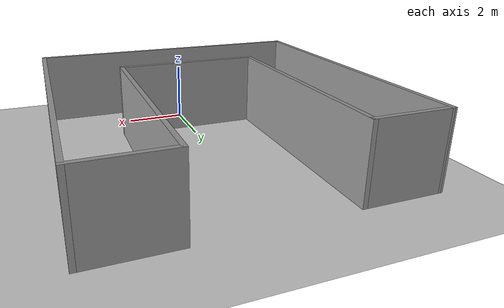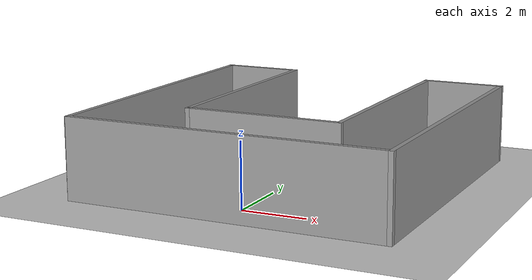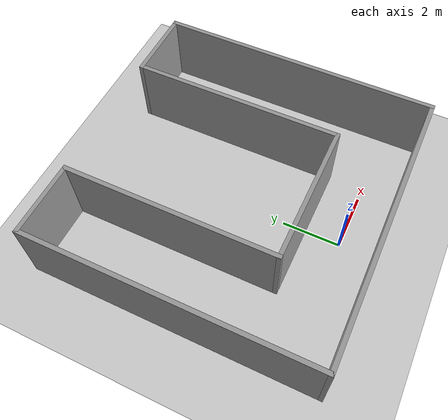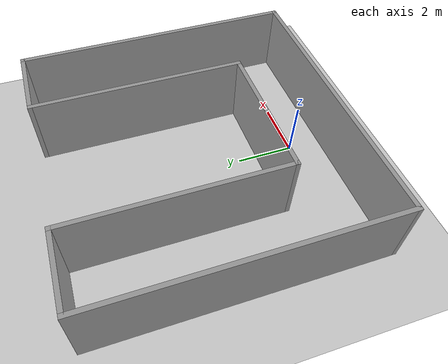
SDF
<sdf version="1.6">
 <world name="default">
  <light name="sun" type="directional">
   <pose>0 0 10 0 -0 0</pose>
   <diffuse>0.8 0.8 0.8 1</diffuse>
   <specular>0.1 0.1 0.1 1</specular>
   <attenuation>
    <range>1000</range>
    <constant>0.9</constant>
    <linear>0.01</linear>
    <quadratic>0.001</quadratic>
   </attenuation>
   <direction>-0.5 0.5 -1</direction>
  </light>
  <model name="ground_plane">
   <static>1</static>
   <link name="link">
    <collision name="collision">
     <geometry><plane><normal>0 0 1</normal><size>100 100</size></plane></geometry>
     <surface><friction><ode><mu>100</mu><mu2>50</mu2></ode></friction></surface>
    </collision>
    <visual name="visual">
     <cast_shadows>0</cast_shadows>
     <geometry><plane><normal>0 0 1</normal><size>100 100</size></plane></geometry>
     <material>
      <script><uri>file://media/materials/scripts/gazebo.material</uri><name>Gazebo/Grey</name></script>
     </material>
    </visual>
   </link>
  </model>
  <gravity>0 0 -9.8</gravity>
  <magnetic_field>6e-06 2.3e-05 -4.2e-05</magnetic_field>
  <atmosphere type="adiabatic"/>
  <physics name="default_physics" default="0" type="ode">
   <max_step_size>0.001</max_step_size>
   <real_time_factor>1</real_time_factor>
   <real_time_update_rate>1000</real_time_update_rate>
  </physics>
  <scene><ambient>0.4 0.4 0.4 1</ambient><background>0.7 0.7 0.7 1</background><shadows>1</shadows></scene>
  <spherical_coordinates>
   <surface_model>EARTH_WGS84</surface_model>
   <latitude_deg>0</latitude_deg>
   <longitude_deg>0</longitude_deg>
   <elevation>0</elevation>
   <heading_deg>0</heading_deg>
  </spherical_coordinates>
  <model name="test_building">
   <link name="Wall_0">
    <pose>-4.92492 -0.009003 0 0 0 -1.57076</pose>
    <visual name="Wall_0_Visual">
     <pose>0 0 1.25 0 -0 0</pose>
     <geometry><box><size>9.98209 0.15 2.5</size></box></geometry>
     <material>
      <script><uri>file://media/materials/scripts/gazebo.material</uri><name>Gazebo/Grey</name></script>
      <ambient>1 1 1 1</ambient>
      <diffuse>0.7 0.7 0.7 1</diffuse>
      <specular>0.01 0.01 0.01 1</specular>
      <emissive>0 0 0 1</emissive>
     </material>
    </visual>
    <collision name="Wall_0_Collision">
     <pose>0 0 1.25 0 -0 0</pose>
     <geometry><box><size>9.98209 0.15 2.5</size></box></geometry>
     <surface>
      <friction>
       <ode><mu>1</mu><mu2>1</mu2><fdir1>0 0 0</fdir1><slip1>0</slip1><slip2>0</slip2></ode>
       <torsional>
        <coefficient>1</coefficient>
        <patch_radius>0</patch_radius>
        <surface_radius>0</surface_radius>
        <use_patch_radius>1</use_patch_radius>
        <ode><slip>0</slip></ode>
       </torsional>
      </friction>
      <bounce><restitution_coefficient>0</restitution_coefficient><threshold>1e+06</threshold></bounce>
      <contact>
       <collide_without_contact>0</collide_without_contact>
       <collide_without_contact_bitmask>1</collide_without_contact_bitmask>
       <collide_bitmask>1</collide_bitmask>
       <ode>
        <soft_cfm>0</soft_cfm>
        <soft_erp>0.2</soft_erp>
        <kp>1e+13</kp>
        <kd>1</kd>
        <max_vel>0.01</max_vel>
        <min_depth>0</min_depth>
       </ode>
       <bullet>
        <split_impulse>1</split_impulse>
        <split_impulse_penetration_threshold>-0.01</split_impulse_penetration_threshold>
        <soft_cfm>0</soft_cfm>
        <soft_erp>0.2</soft_erp>
        <kp>1e+13</kp>
        <kd>1</kd>
       </bullet>
      </contact>
     </surface>
    </collision>
   </link>
   <link name="Wall_1">
    <pose>8.4e-05 -4.925 0 0 -0 1e-05</pose>
    <visual name="Wall_1_Visual">
     <pose>0 0 1.25 0 -0 0</pose>
     <geometry><box><size>10 0.15 2.5</size></box></geometry>
     <material>
      <script><uri>file://media/materials/scripts/gazebo.material</uri><name>Gazebo/Grey</name></script>
      <ambient>1 1 1 1</ambient>
      <diffuse>0.7 0.7 0.7 1</diffuse>
      <specular>0.01 0.01 0.01 1</specular>
      <emissive>0 0 0 1</emissive>
     </material>
    </visual>
    <collision name="Wall_1_Collision">
     <pose>0 0 1.25 0 -0 0</pose>
     <geometry><box><size>10 0.15 2.5</size></box></geometry>
     <surface>
      <friction>
       <ode><mu>1</mu><mu2>1</mu2><fdir1>0 0 0</fdir1><slip1>0</slip1><slip2>0</slip2></ode>
       <torsional>
        <coefficient>1</coefficient>
        <patch_radius>0</patch_radius>
        <surface_radius>0</surface_radius>
        <use_patch_radius>1</use_patch_radius>
        <ode><slip>0</slip></ode>
       </torsional>
      </friction>
      <bounce><restitution_coefficient>0</restitution_coefficient><threshold>1e+06</threshold></bounce>
      <contact>
       <collide_without_contact>0</collide_without_contact>
       <collide_without_contact_bitmask>1</collide_without_contact_bitmask>
       <collide_bitmask>1</collide_bitmask>
       <ode>
        <soft_cfm>0</soft_cfm>
        <soft_erp>0.2</soft_erp>
        <kp>1e+13</kp>
        <kd>1</kd>
        <max_vel>0.01</max_vel>
        <min_depth>0</min_depth>
       </ode>
       <bullet>
        <split_impulse>1</split_impulse>
        <split_impulse_penetration_threshold>-0.01</split_impulse_penetration_threshold>
        <soft_cfm>0</soft_cfm>
        <soft_erp>0.2</soft_erp>
        <kp>1e+13</kp>
        <kd>1</kd>
       </bullet>
      </contact>
     </surface>
    </collision>
   </link>
   <link name="Wall_2">
    <pose>4.92492 4.4e-05 0 0 -0 1.5708</pose>
    <visual name="Wall_2_Visual">
     <pose>0 0 1.25 0 -0 0</pose>
     <geometry><box><size>10 0.15 2.5</size></box></geometry>
     <material>
      <script><uri>file://media/materials/scripts/gazebo.material</uri><name>Gazebo/Grey</name></script>
      <ambient>1 1 1 1</ambient>
      <diffuse>0.7 0.7 0.7 1</diffuse>
      <specular>0.01 0.01 0.01 1</specular>
      <emissive>0 0 0 1</emissive>
     </material>
    </visual>
    <collision name="Wall_2_Collision">
     <pose>0 0 1.25 0 -0 0</pose>
     <geometry><box><size>10 0.15 2.5</size></box></geometry>
     <surface>
      <friction>
       <ode><mu>1</mu><mu2>1</mu2><fdir1>0 0 0</fdir1><slip1>0</slip1><slip2>0</slip2></ode>
       <torsional>
        <coefficient>1</coefficient>
        <patch_radius>0</patch_radius>
        <surface_radius>0</surface_radius>
        <use_patch_radius>1</use_patch_radius>
        <ode><slip>0</slip></ode>
       </torsional>
      </friction>
      <bounce><restitution_coefficient>0</restitution_coefficient><threshold>1e+06</threshold></bounce>
      <contact>
       <collide_without_contact>0</collide_without_contact>
       <collide_without_contact_bitmask>1</collide_without_contact_bitmask>
       <collide_bitmask>1</collide_bitmask>
       <ode>
        <soft_cfm>0</soft_cfm>
        <soft_erp>0.2</soft_erp>
        <kp>1e+13</kp>
        <kd>1</kd>
        <max_vel>0.01</max_vel>
        <min_depth>0</min_depth>
       </ode>
       <bullet>
        <split_impulse>1</split_impulse>
        <split_impulse_penetration_threshold>-0.01</split_impulse_penetration_threshold>
        <soft_cfm>0</soft_cfm>
        <soft_erp>0.2</soft_erp>
        <kp>1e+13</kp>
        <kd>1</kd>
       </bullet>
      </contact>
     </surface>
    </collision>
   </link>
   <link name="Wall_3">
    <pose>3.67492 4.92504 0 0 -0 3.14159</pose>
    <visual name="Wall_3_Visual">
     <pose>0 0 1.25 0 -0 0</pose>
     <geometry><box><size>2.65 0.15 2.5</size></box></geometry>
     <material>
      <script><uri>file://media/materials/scripts/gazebo.material</uri><name>Gazebo/Grey</name></script>
      <ambient>1 1 1 1</ambient>
      <diffuse>0.7 0.7 0.7 1</diffuse>
      <specular>0.01 0.01 0.01 1</specular>
      <emissive>0 0 0 1</emissive>
     </material>
    </visual>
    <collision name="Wall_3_Collision">
     <pose>0 0 1.25 0 -0 0</pose>
     <geometry><box><size>2.65 0.15 2.5</size></box></geometry>
     <surface>
      <friction>
       <ode><mu>1</mu><mu2>1</mu2><fdir1>0 0 0</fdir1><slip1>0</slip1><slip2>0</slip2></ode>
       <torsional>
        <coefficient>1</coefficient>
        <patch_radius>0</patch_radius>
        <surface_radius>0</surface_radius>
        <use_patch_radius>1</use_patch_radius>
        <ode><slip>0</slip></ode>
       </torsional>
      </friction>
      <bounce><restitution_coefficient>0</restitution_coefficient><threshold>1e+06</threshold></bounce>
      <contact>
       <collide_without_contact>0</collide_without_contact>
       <collide_without_contact_bitmask>1</collide_without_contact_bitmask>
       <collide_bitmask>1</collide_bitmask>
       <ode>
        <soft_cfm>0</soft_cfm>
        <soft_erp>0.2</soft_erp>
        <kp>1e+13</kp>
        <kd>1</kd>
        <max_vel>0.01</max_vel>
        <min_depth>0</min_depth>
       </ode>
       <bullet>
        <split_impulse>1</split_impulse>
        <split_impulse_penetration_threshold>-0.01</split_impulse_penetration_threshold>
        <soft_cfm>0</soft_cfm>
        <soft_erp>0.2</soft_erp>
        <kp>1e+13</kp>
        <kd>1</kd>
       </bullet>
      </contact>
     </surface>
    </collision>
   </link>
   <link name="Wall_4">
    <pose>2.42492 1.25004 0 0 0 -1.5708</pose>
    <visual name="Wall_4_Visual">
     <pose>0 0 1.25 0 -0 0</pose>
     <geometry><box><size>7.5 0.15 2.5</size></box></geometry>
     <material>
      <script><uri>file://media/materials/scripts/gazebo.material</uri><name>Gazebo/Grey</name></script>
      <ambient>1 1 1 1</ambient>
      <diffuse>0.7 0.7 0.7 1</diffuse>
      <specular>0.01 0.01 0.01 1</specular>
      <emissive>0 0 0 1</emissive>
     </material>
    </visual>
    <collision name="Wall_4_Collision">
     <pose>0 0 1.25 0 -0 0</pose>
     <geometry><box><size>7.5 0.15 2.5</size></box></geometry>
     <surface>
      <friction>
       <ode><mu>1</mu><mu2>1</mu2><fdir1>0 0 0</fdir1><slip1>0</slip1><slip2>0</slip2></ode>
       <torsional>
        <coefficient>1</coefficient>
        <patch_radius>0</patch_radius>
        <surface_radius>0</surface_radius>
        <use_patch_radius>1</use_patch_radius>
        <ode><slip>0</slip></ode>
       </torsional>
      </friction>
      <bounce><restitution_coefficient>0</restitution_coefficient><threshold>1e+06</threshold></bounce>
      <contact>
       <collide_without_contact>0</collide_without_contact>
       <collide_without_contact_bitmask>1</collide_without_contact_bitmask>
       <collide_bitmask>1</collide_bitmask>
       <ode>
        <soft_cfm>0</soft_cfm>
        <soft_erp>0.2</soft_erp>
        <kp>1e+13</kp>
        <kd>1</kd>
        <max_vel>0.01</max_vel>
        <min_depth>0</min_depth>
       </ode>
       <bullet>
        <split_impulse>1</split_impulse>
        <split_impulse_penetration_threshold>-0.01</split_impulse_penetration_threshold>
        <soft_cfm>0</soft_cfm>
        <soft_erp>0.2</soft_erp>
        <kp>1e+13</kp>
        <kd>1</kd>
       </bullet>
      </contact>
     </surface>
    </collision>
   </link>
   <link name="Wall_5">
    <pose>-8.2e-05 -2.42496 0 0 -0 3.14159</pose>
    <visual name="Wall_5_Visual">
     <pose>0 0 1.25 0 -0 0</pose>
     <geometry><box><size>5 0.15 2.5</size></box></geometry>
     <material>
      <script><uri>file://media/materials/scripts/gazebo.material</uri><name>Gazebo/Grey</name></script>
      <ambient>1 1 1 1</ambient>
      <diffuse>0.7 0.7 0.7 1</diffuse>
      <specular>0.01 0.01 0.01 1</specular>
      <emissive>0 0 0 1</emissive>
     </material>
    </visual>
    <collision name="Wall_5_Collision">
     <pose>0 0 1.25 0 -0 0</pose>
     <geometry><box><size>5 0.15 2.5</size></box></geometry>
     <surface>
      <friction>
       <ode><mu>1</mu><mu2>1</mu2><fdir1>0 0 0</fdir1><slip1>0</slip1><slip2>0</slip2></ode>
       <torsional>
        <coefficient>1</coefficient>
        <patch_radius>0</patch_radius>
        <surface_radius>0</surface_radius>
        <use_patch_radius>1</use_patch_radius>
        <ode><slip>0</slip></ode>
       </torsional>
      </friction>
      <bounce><restitution_coefficient>0</restitution_coefficient><threshold>1e+06</threshold></bounce>
      <contact>
       <collide_without_contact>0</collide_without_contact>
       <collide_without_contact_bitmask>1</collide_without_contact_bitmask>
       <collide_bitmask>1</collide_bitmask>
       <ode>
        <soft_cfm>0</soft_cfm>
        <soft_erp>0.2</soft_erp>
        <kp>1e+13</kp>
        <kd>1</kd>
        <max_vel>0.01</max_vel>
        <min_depth>0</min_depth>
       </ode>
       <bullet>
        <split_impulse>1</split_impulse>
        <split_impulse_penetration_threshold>-0.01</split_impulse_penetration_threshold>
        <soft_cfm>0</soft_cfm>
        <soft_erp>0.2</soft_erp>
        <kp>1e+13</kp>
        <kd>1</kd>
       </bullet>
      </contact>
     </surface>
    </collision>
   </link>
   <link name="Wall_6">
    <pose>-2.42508 1.24104 0 0 -0 1.5708</pose>
    <visual name="Wall_6_Visual">
     <pose>0 0 1.25 0 -0 0</pose>
     <geometry><box><size>7.482 0.15 2.5</size></box></geometry>
     <material>
      <script><uri>file://media/materials/scripts/gazebo.material</uri><name>Gazebo/Grey</name></script>
      <ambient>1 1 1 1</ambient>
      <diffuse>0.7 0.7 0.7 1</diffuse>
      <specular>0.01 0.01 0.01 1</specular>
      <emissive>0 0 0 1</emissive>
     </material>
    </visual>
    <collision name="Wall_6_Collision">
     <pose>0 0 1.25 0 -0 0</pose>
     <geometry><box><size>7.482 0.15 2.5</size></box></geometry>
     <surface>
      <friction>
       <ode><mu>1</mu><mu2>1</mu2><fdir1>0 0 0</fdir1><slip1>0</slip1><slip2>0</slip2></ode>
       <torsional>
        <coefficient>1</coefficient>
        <patch_radius>0</patch_radius>
        <surface_radius>0</surface_radius>
        <use_patch_radius>1</use_patch_radius>
        <ode><slip>0</slip></ode>
       </torsional>
      </friction>
      <bounce><restitution_coefficient>0</restitution_coefficient><threshold>1e+06</threshold></bounce>
      <contact>
       <collide_without_contact>0</collide_without_contact>
       <collide_without_contact_bitmask>1</collide_without_contact_bitmask>
       <collide_bitmask>1</collide_bitmask>
       <ode>
        <soft_cfm>0</soft_cfm>
        <soft_erp>0.2</soft_erp>
        <kp>1e+13</kp>
        <kd>1</kd>
        <max_vel>0.01</max_vel>
        <min_depth>0</min_depth>
       </ode>
       <bullet>
        <split_impulse>1</split_impulse>
        <split_impulse_penetration_threshold>-0.01</split_impulse_penetration_threshold>
        <soft_cfm>0</soft_cfm>
        <soft_erp>0.2</soft_erp>
        <kp>1e+13</kp>
        <kd>1</kd>
       </bullet>
      </contact>
     </surface>
    </collision>
   </link>
   <link name="Wall_7">
    <pose>-3.67508 4.90704 0 0 -0 3.14159</pose>
    <visual name="Wall_7_Visual">
     <pose>0 0 1.25 0 -0 0</pose>
     <geometry><box><size>2.64967 0.15 2.5</size></box></geometry>
     <material>
      <script><uri>file://media/materials/scripts/gazebo.material</uri><name>Gazebo/Grey</name></script>
      <ambient>1 1 1 1</ambient>
      <diffuse>0.7 0.7 0.7 1</diffuse>
      <specular>0.01 0.01 0.01 1</specular>
      <emissive>0 0 0 1</emissive>
     </material>
    </visual>
    <collision name="Wall_7_Collision">
     <pose>0 0 1.25 0 -0 0</pose>
     <geometry><box><size>2.64967 0.15 2.5</size></box></geometry>
     <surface>
      <friction>
       <ode><mu>1</mu><mu2>1</mu2><fdir1>0 0 0</fdir1><slip1>0</slip1><slip2>0</slip2></ode>
       <torsional>
        <coefficient>1</coefficient>
        <patch_radius>0</patch_radius>
        <surface_radius>0</surface_radius>
        <use_patch_radius>1</use_patch_radius>
        <ode><slip>0</slip></ode>
       </torsional>
      </friction>
      <bounce><restitution_coefficient>0</restitution_coefficient><threshold>1e+06</threshold></bounce>
      <contact>
       <collide_without_contact>0</collide_without_contact>
       <collide_without_contact_bitmask>1</collide_without_contact_bitmask>
       <collide_bitmask>1</collide_bitmask>
       <ode>
        <soft_cfm>0</soft_cfm>
        <soft_erp>0.2</soft_erp>
        <kp>1e+13</kp>
        <kd>1</kd>
        <max_vel>0.01</max_vel>
        <min_depth>0</min_depth>
       </ode>
       <bullet>
        <split_impulse>1</split_impulse>
        <split_impulse_penetration_threshold>-0.01</split_impulse_penetration_threshold>
        <soft_cfm>0</soft_cfm>
        <soft_erp>0.2</soft_erp>
        <kp>1e+13</kp>
        <kd>1</kd>
       </bullet>
      </contact>
     </surface>
    </collision>
   </link>
   <static>1</static>
   <pose>0 3.7 0 0 -0 0</pose>
  </model>
 </world>
</sdf>
